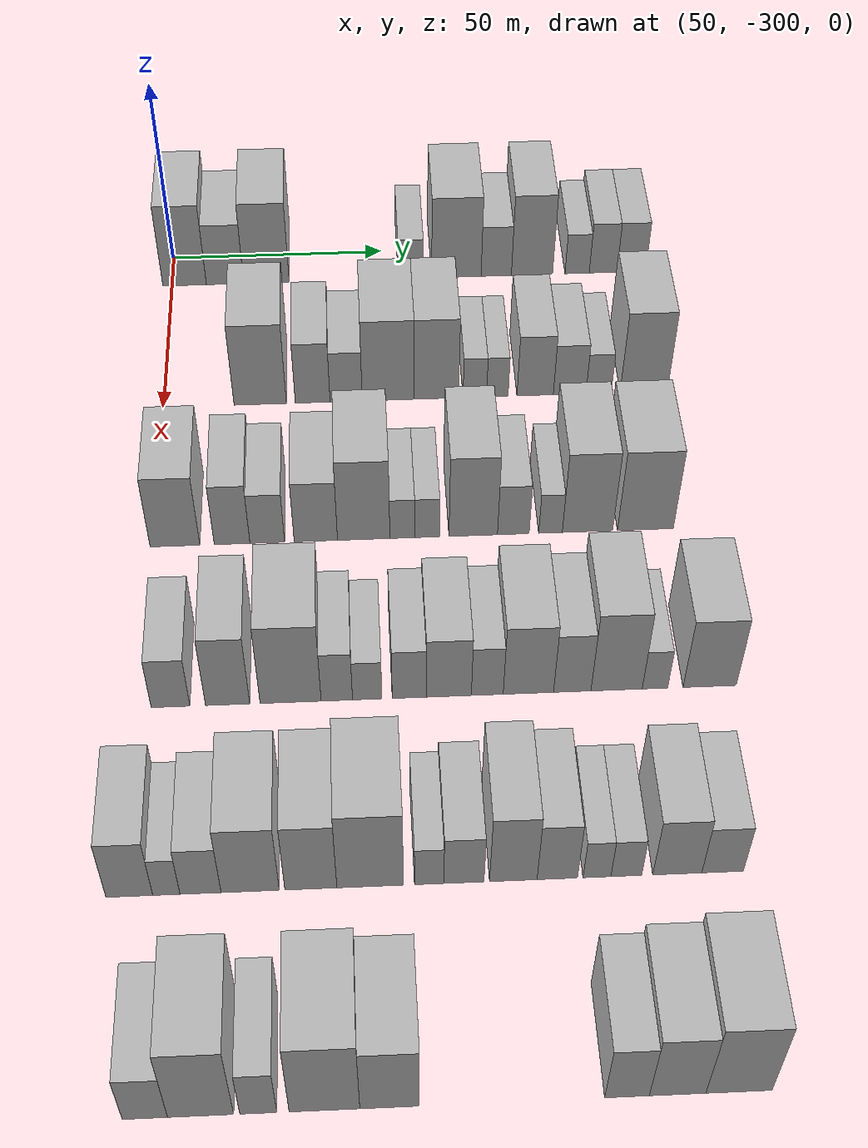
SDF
<sdf version="1.6">
 <world name="default">
  <model name="building_38">
   <static>1</static>
   <pose>50.0000 -296.9839 0 0.000000 0.000000 0.000000</pose>
   <link name="link">
    <pose>0 0 12.00 0 0 0</pose>
    <collision name="collision"><geometry><box><size>20.0000 10.2897 24.0000</size></box></geometry></collision>
    <visual name="visual">
     <cast_shadows>0</cast_shadows>
     <geometry><box><size>20.0000 10.2897 24.0000</size></box></geometry>
     <material>
      <script>
       <uri>model://HANNAS_wall/materials/scripts</uri>
       <uri>model://HANNAS_wall/materials/textures</uri>
       <name>vrc/HANNAS_wall</name>
      </script>
     </material>
    </visual>
   </link>
  </model>
  <model name="building_39">
   <static>1</static>
   <pose>50.0000 -287.4079 0 0.000000 0.000000 0.000000</pose>
   <link name="link">
    <pose>0 0 9.00 0 0 0</pose>
    <collision name="collision"><geometry><box><size>20.0000 8.8624 18.0000</size></box></geometry></collision>
    <visual name="visual">
     <cast_shadows>0</cast_shadows>
     <geometry><box><size>20.0000 8.8624 18.0000</size></box></geometry>
     <material>
      <script>
       <uri>model://HANNAS_wall/materials/scripts</uri>
       <uri>model://HANNAS_wall/materials/textures</uri>
       <name>vrc/HANNAS_wall</name>
      </script>
     </material>
    </visual>
   </link>
  </model>
  <model name="building_40">
   <static>1</static>
   <pose>50.0000 -277.5748 0 0.000000 0.000000 0.000000</pose>
   <link name="link">
    <pose>0 0 12.00 0 0 0</pose>
    <collision name="collision"><geometry><box><size>20.0000 10.8038 24.0000</size></box></geometry></collision>
    <visual name="visual">
     <cast_shadows>0</cast_shadows>
     <geometry><box><size>20.0000 10.8038 24.0000</size></box></geometry>
     <material>
      <script>
       <uri>model://HANNAS_wall/materials/scripts</uri>
       <uri>model://HANNAS_wall/materials/textures</uri>
       <name>vrc/HANNAS_wall</name>
      </script>
     </material>
    </visual>
   </link>
  </model>
  <model name="building_41">
   <static>1</static>
   <pose>50.0000 -243.2245 0 0.000000 0.000000 0.000000</pose>
   <link name="link">
    <pose>0 0 6.00 0 0 0</pose>
    <collision name="collision"><geometry><box><size>20.0000 5.9656 12.0000</size></box></geometry></collision>
    <visual name="visual">
     <cast_shadows>0</cast_shadows>
     <geometry><box><size>20.0000 5.9656 12.0000</size></box></geometry>
     <material>
      <script>
       <uri>model://HANNAS_wall/materials/scripts</uri>
       <uri>model://HANNAS_wall/materials/textures</uri>
       <name>vrc/HANNAS_wall</name>
      </script>
     </material>
    </visual>
   </link>
  </model>
  <model name="building_42">
   <static>1</static>
   <pose>50.0000 -232.3315 0 0.000000 0.000000 0.000000</pose>
   <link name="link">
    <pose>0 0 12.00 0 0 0</pose>
    <collision name="collision"><geometry><box><size>20.0000 11.8202 24.0000</size></box></geometry></collision>
    <visual name="visual">
     <cast_shadows>0</cast_shadows>
     <geometry><box><size>20.0000 11.8202 24.0000</size></box></geometry>
     <material>
      <script>
       <uri>model://HANNAS_wall/materials/scripts</uri>
       <uri>model://HANNAS_wall/materials/textures</uri>
       <name>vrc/HANNAS_wall</name>
      </script>
     </material>
    </visual>
   </link>
  </model>
  <model name="building_43">
   <static>1</static>
   <pose>50.0000 -222.7907 0 0.000000 0.000000 0.000000</pose>
   <link name="link">
    <pose>0 0 7.50 0 0 0</pose>
    <collision name="collision"><geometry><box><size>20.0000 7.2614 15.0000</size></box></geometry></collision>
    <visual name="visual">
     <cast_shadows>0</cast_shadows>
     <geometry><box><size>20.0000 7.2614 15.0000</size></box></geometry>
     <material>
      <script>
       <uri>model://HANNAS_wall/materials/scripts</uri>
       <uri>model://HANNAS_wall/materials/textures</uri>
       <name>vrc/HANNAS_wall</name>
      </script>
     </material>
    </visual>
   </link>
  </model>
  <model name="building_44">
   <static>1</static>
   <pose>50.0000 -214.2294 0 0.000000 0.000000 0.000000</pose>
   <link name="link">
    <pose>0 0 12.00 0 0 0</pose>
    <collision name="collision"><geometry><box><size>20.0000 9.8612 24.0000</size></box></geometry></collision>
    <visual name="visual">
     <cast_shadows>0</cast_shadows>
     <geometry><box><size>20.0000 9.8612 24.0000</size></box></geometry>
     <material>
      <script>
       <uri>model://HANNAS_wall/materials/scripts</uri>
       <uri>model://HANNAS_wall/materials/textures</uri>
       <name>vrc/HANNAS_wall</name>
      </script>
     </material>
    </visual>
   </link>
  </model>
  <model name="building_45">
   <static>1</static>
   <pose>50.0000 -203.3863 0 0.000000 0.000000 0.000000</pose>
   <link name="link">
    <pose>0 0 6.00 0 0 0</pose>
    <collision name="collision"><geometry><box><size>20.0000 5.8248 12.0000</size></box></geometry></collision>
    <visual name="visual">
     <cast_shadows>0</cast_shadows>
     <geometry><box><size>20.0000 5.8248 12.0000</size></box></geometry>
     <material>
      <script>
       <uri>model://HANNAS_wall/materials/scripts</uri>
       <uri>model://HANNAS_wall/materials/textures</uri>
       <name>vrc/HANNAS_wall</name>
      </script>
     </material>
    </visual>
   </link>
  </model>
  <model name="building_46">
   <static>1</static>
   <pose>50.0000 -197.1510 0 0.000000 0.000000 0.000000</pose>
   <link name="link">
    <pose>0 0 7.50 0 0 0</pose>
    <collision name="collision"><geometry><box><size>20.0000 6.6458 15.0000</size></box></geometry></collision>
    <visual name="visual">
     <cast_shadows>0</cast_shadows>
     <geometry><box><size>20.0000 6.6458 15.0000</size></box></geometry>
     <material>
      <script>
       <uri>model://HANNAS_wall/materials/scripts</uri>
       <uri>model://HANNAS_wall/materials/textures</uri>
       <name>vrc/HANNAS_wall</name>
      </script>
     </material>
    </visual>
   </link>
  </model>
  <model name="building_47">
   <static>1</static>
   <pose>50.0000 -190.3913 0 0.000000 0.000000 0.000000</pose>
   <link name="link">
    <pose>0 0 7.50 0 0 0</pose>
    <collision name="collision"><geometry><box><size>20.0000 6.8738 15.0000</size></box></geometry></collision>
    <visual name="visual">
     <cast_shadows>0</cast_shadows>
     <geometry><box><size>20.0000 6.8738 15.0000</size></box></geometry>
     <material>
      <script>
       <uri>model://HANNAS_wall/materials/scripts</uri>
       <uri>model://HANNAS_wall/materials/textures</uri>
       <name>vrc/HANNAS_wall</name>
      </script>
     </material>
    </visual>
   </link>
  </model>
  <model name="building_179">
   <static>1</static>
   <pose>90.0000 -278.4819 0 0.000000 0.000000 0.000000</pose>
   <link name="link">
    <pose>0 0 12.00 0 0 0</pose>
    <collision name="collision"><geometry><box><size>20.0000 11.6277 24.0000</size></box></geometry></collision>
    <visual name="visual">
     <cast_shadows>0</cast_shadows>
     <geometry><box><size>20.0000 11.6277 24.0000</size></box></geometry>
     <material>
      <script>
       <uri>model://HANNAS_wall/materials/scripts</uri>
       <uri>model://HANNAS_wall/materials/textures</uri>
       <name>vrc/HANNAS_wall</name>
      </script>
     </material>
    </visual>
   </link>
  </model>
  <model name="building_180">
   <static>1</static>
   <pose>90.0000 -266.7955 0 0.000000 0.000000 0.000000</pose>
   <link name="link">
    <pose>0 0 9.00 0 0 0</pose>
    <collision name="collision"><geometry><box><size>20.0000 7.7450 18.0000</size></box></geometry></collision>
    <visual name="visual">
     <cast_shadows>0</cast_shadows>
     <geometry><box><size>20.0000 7.7450 18.0000</size></box></geometry>
     <material>
      <script>
       <uri>model://HANNAS_wall/materials/scripts</uri>
       <uri>model://HANNAS_wall/materials/textures</uri>
       <name>vrc/HANNAS_wall</name>
      </script>
     </material>
    </visual>
   </link>
  </model>
  <model name="building_181">
   <static>1</static>
   <pose>90.0000 -259.3397 0 0.000000 0.000000 0.000000</pose>
   <link name="link">
    <pose>0 0 7.50 0 0 0</pose>
    <collision name="collision"><geometry><box><size>20.0000 7.1667 15.0000</size></box></geometry></collision>
    <visual name="visual">
     <cast_shadows>0</cast_shadows>
     <geometry><box><size>20.0000 7.1667 15.0000</size></box></geometry>
     <material>
      <script>
       <uri>model://HANNAS_wall/materials/scripts</uri>
       <uri>model://HANNAS_wall/materials/textures</uri>
       <name>vrc/HANNAS_wall</name>
      </script>
     </material>
    </visual>
   </link>
  </model>
  <model name="building_182">
   <static>1</static>
   <pose>90.0000 -249.9329 0 0.000000 0.000000 0.000000</pose>
   <link name="link">
    <pose>0 0 12.00 0 0 0</pose>
    <collision name="collision"><geometry><box><size>20.0000 11.6470 24.0000</size></box></geometry></collision>
    <visual name="visual">
     <cast_shadows>0</cast_shadows>
     <geometry><box><size>20.0000 11.6470 24.0000</size></box></geometry>
     <material>
      <script>
       <uri>model://HANNAS_wall/materials/scripts</uri>
       <uri>model://HANNAS_wall/materials/textures</uri>
       <name>vrc/HANNAS_wall</name>
      </script>
     </material>
    </visual>
   </link>
  </model>
  <model name="building_183">
   <static>1</static>
   <pose>90.0000 -239.1637 0 0.000000 0.000000 0.000000</pose>
   <link name="link">
    <pose>0 0 12.00 0 0 0</pose>
    <collision name="collision"><geometry><box><size>20.0000 9.8913 24.0000</size></box></geometry></collision>
    <visual name="visual">
     <cast_shadows>0</cast_shadows>
     <geometry><box><size>20.0000 9.8913 24.0000</size></box></geometry>
     <material>
      <script>
       <uri>model://HANNAS_wall/materials/scripts</uri>
       <uri>model://HANNAS_wall/materials/textures</uri>
       <name>vrc/HANNAS_wall</name>
      </script>
     </material>
    </visual>
   </link>
  </model>
  <model name="building_184">
   <static>1</static>
   <pose>90.0000 -230.5788 0 0.000000 0.000000 0.000000</pose>
   <link name="link">
    <pose>0 0 6.00 0 0 0</pose>
    <collision name="collision"><geometry><box><size>20.0000 5.2786 12.0000</size></box></geometry></collision>
    <visual name="visual">
     <cast_shadows>0</cast_shadows>
     <geometry><box><size>20.0000 5.2786 12.0000</size></box></geometry>
     <material>
      <script>
       <uri>model://HANNAS_wall/materials/scripts</uri>
       <uri>model://HANNAS_wall/materials/textures</uri>
       <name>vrc/HANNAS_wall</name>
      </script>
     </material>
    </visual>
   </link>
  </model>
  <model name="building_185">
   <static>1</static>
   <pose>90.0000 -225.5299 0 0.000000 0.000000 0.000000</pose>
   <link name="link">
    <pose>0 0 6.00 0 0 0</pose>
    <collision name="collision"><geometry><box><size>20.0000 4.8191 12.0000</size></box></geometry></collision>
    <visual name="visual">
     <cast_shadows>0</cast_shadows>
     <geometry><box><size>20.0000 4.8191 12.0000</size></box></geometry>
     <material>
      <script>
       <uri>model://HANNAS_wall/materials/scripts</uri>
       <uri>model://HANNAS_wall/materials/textures</uri>
       <name>vrc/HANNAS_wall</name>
      </script>
     </material>
    </visual>
   </link>
  </model>
  <model name="building_186">
   <static>1</static>
   <pose>90.0000 -217.0432 0 0.000000 0.000000 0.000000</pose>
   <link name="link">
    <pose>0 0 9.00 0 0 0</pose>
    <collision name="collision"><geometry><box><size>20.0000 8.1545 18.0000</size></box></geometry></collision>
    <visual name="visual">
     <cast_shadows>0</cast_shadows>
     <geometry><box><size>20.0000 8.1545 18.0000</size></box></geometry>
     <material>
      <script>
       <uri>model://HANNAS_wall/materials/scripts</uri>
       <uri>model://HANNAS_wall/materials/textures</uri>
       <name>vrc/HANNAS_wall</name>
      </script>
     </material>
    </visual>
   </link>
  </model>
  <model name="building_187">
   <static>1</static>
   <pose>90.0000 -209.2895 0 0.000000 0.000000 0.000000</pose>
   <link name="link">
    <pose>0 0 7.50 0 0 0</pose>
    <collision name="collision"><geometry><box><size>20.0000 7.3528 15.0000</size></box></geometry></collision>
    <visual name="visual">
     <cast_shadows>0</cast_shadows>
     <geometry><box><size>20.0000 7.3528 15.0000</size></box></geometry>
     <material>
      <script>
       <uri>model://HANNAS_wall/materials/scripts</uri>
       <uri>model://HANNAS_wall/materials/textures</uri>
       <name>vrc/HANNAS_wall</name>
      </script>
     </material>
    </visual>
   </link>
  </model>
  <model name="building_188">
   <static>1</static>
   <pose>90.0000 -202.7772 0 0.000000 0.000000 0.000000</pose>
   <link name="link">
    <pose>0 0 6.00 0 0 0</pose>
    <collision name="collision"><geometry><box><size>20.0000 5.6718 12.0000</size></box></geometry></collision>
    <visual name="visual">
     <cast_shadows>0</cast_shadows>
     <geometry><box><size>20.0000 5.6718 12.0000</size></box></geometry>
     <material>
      <script>
       <uri>model://HANNAS_wall/materials/scripts</uri>
       <uri>model://HANNAS_wall/materials/textures</uri>
       <name>vrc/HANNAS_wall</name>
      </script>
     </material>
    </visual>
   </link>
  </model>
  <model name="building_189">
   <static>1</static>
   <pose>90.0000 -192.6108 0 0.000000 0.000000 0.000000</pose>
   <link name="link">
    <pose>0 0 12.00 0 0 0</pose>
    <collision name="collision"><geometry><box><size>20.0000 10.6610 24.0000</size></box></geometry></collision>
    <visual name="visual">
     <cast_shadows>0</cast_shadows>
     <geometry><box><size>20.0000 10.6610 24.0000</size></box></geometry>
     <material>
      <script>
       <uri>model://HANNAS_wall/materials/scripts</uri>
       <uri>model://HANNAS_wall/materials/textures</uri>
       <name>vrc/HANNAS_wall</name>
      </script>
     </material>
    </visual>
   </link>
  </model>
  <model name="building_318">
   <static>1</static>
   <pose>130.0000 -295.5775 0 0.000000 0.000000 0.000000</pose>
   <link name="link">
    <pose>0 0 10.50 0 0 0</pose>
    <collision name="collision"><geometry><box><size>20.0000 10.2901 21.0000</size></box></geometry></collision>
    <visual name="visual">
     <cast_shadows>0</cast_shadows>
     <geometry><box><size>20.0000 10.2901 21.0000</size></box></geometry>
     <material>
      <script>
       <uri>model://HANNAS_wall/materials/scripts</uri>
       <uri>model://HANNAS_wall/materials/textures</uri>
       <name>vrc/HANNAS_wall</name>
      </script>
     </material>
    </visual>
   </link>
  </model>
  <model name="building_319">
   <static>1</static>
   <pose>130.0000 -283.7411 0 0.000000 0.000000 0.000000</pose>
   <link name="link">
    <pose>0 0 9.00 0 0 0</pose>
    <collision name="collision"><geometry><box><size>20.0000 7.3829 18.0000</size></box></geometry></collision>
    <visual name="visual">
     <cast_shadows>0</cast_shadows>
     <geometry><box><size>20.0000 7.3829 18.0000</size></box></geometry>
     <material>
      <script>
       <uri>model://HANNAS_wall/materials/scripts</uri>
       <uri>model://HANNAS_wall/materials/textures</uri>
       <name>vrc/HANNAS_wall</name>
      </script>
     </material>
    </visual>
   </link>
  </model>
  <model name="building_320">
   <static>1</static>
   <pose>130.0000 -276.4550 0 0.000000 0.000000 0.000000</pose>
   <link name="link">
    <pose>0 0 7.50 0 0 0</pose>
    <collision name="collision"><geometry><box><size>20.0000 7.1892 15.0000</size></box></geometry></collision>
    <visual name="visual">
     <cast_shadows>0</cast_shadows>
     <geometry><box><size>20.0000 7.1892 15.0000</size></box></geometry>
     <material>
      <script>
       <uri>model://HANNAS_wall/materials/scripts</uri>
       <uri>model://HANNAS_wall/materials/textures</uri>
       <name>vrc/HANNAS_wall</name>
      </script>
     </material>
    </visual>
   </link>
  </model>
  <model name="building_321">
   <static>1</static>
   <pose>130.0000 -266.3626 0 0.000000 0.000000 0.000000</pose>
   <link name="link">
    <pose>0 0 9.00 0 0 0</pose>
    <collision name="collision"><geometry><box><size>20.0000 8.9956 18.0000</size></box></geometry></collision>
    <visual name="visual">
     <cast_shadows>0</cast_shadows>
     <geometry><box><size>20.0000 8.9956 18.0000</size></box></geometry>
     <material>
      <script>
       <uri>model://HANNAS_wall/materials/scripts</uri>
       <uri>model://HANNAS_wall/materials/textures</uri>
       <name>vrc/HANNAS_wall</name>
      </script>
     </material>
    </visual>
   </link>
  </model>
  <model name="building_322">
   <static>1</static>
   <pose>130.0000 -256.4152 0 0.000000 0.000000 0.000000</pose>
   <link name="link">
    <pose>0 0 12.00 0 0 0</pose>
    <collision name="collision"><geometry><box><size>20.0000 10.8993 24.0000</size></box></geometry></collision>
    <visual name="visual">
     <cast_shadows>0</cast_shadows>
     <geometry><box><size>20.0000 10.8993 24.0000</size></box></geometry>
     <material>
      <script>
       <uri>model://HANNAS_wall/materials/scripts</uri>
       <uri>model://HANNAS_wall/materials/textures</uri>
       <name>vrc/HANNAS_wall</name>
      </script>
     </material>
    </visual>
   </link>
  </model>
  <model name="building_323">
   <static>1</static>
   <pose>130.0000 -248.3699 0 0.000000 0.000000 0.000000</pose>
   <link name="link">
    <pose>0 0 6.00 0 0 0</pose>
    <collision name="collision"><geometry><box><size>20.0000 5.1913 12.0000</size></box></geometry></collision>
    <visual name="visual">
     <cast_shadows>0</cast_shadows>
     <geometry><box><size>20.0000 5.1913 12.0000</size></box></geometry>
     <material>
      <script>
       <uri>model://HANNAS_wall/materials/scripts</uri>
       <uri>model://HANNAS_wall/materials/textures</uri>
       <name>vrc/HANNAS_wall</name>
      </script>
     </material>
    </visual>
   </link>
  </model>
  <model name="building_324">
   <static>1</static>
   <pose>130.0000 -243.2069 0 0.000000 0.000000 0.000000</pose>
   <link name="link">
    <pose>0 0 6.00 0 0 0</pose>
    <collision name="collision"><geometry><box><size>20.0000 5.1347 12.0000</size></box></geometry></collision>
    <visual name="visual">
     <cast_shadows>0</cast_shadows>
     <geometry><box><size>20.0000 5.1347 12.0000</size></box></geometry>
     <material>
      <script>
       <uri>model://HANNAS_wall/materials/scripts</uri>
       <uri>model://HANNAS_wall/materials/textures</uri>
       <name>vrc/HANNAS_wall</name>
      </script>
     </material>
    </visual>
   </link>
  </model>
  <model name="building_325">
   <static>1</static>
   <pose>130.0000 -233.5717 0 0.000000 0.000000 0.000000</pose>
   <link name="link">
    <pose>0 0 12.00 0 0 0</pose>
    <collision name="collision"><geometry><box><size>20.0000 10.1357 24.0000</size></box></geometry></collision>
    <visual name="visual">
     <cast_shadows>0</cast_shadows>
     <geometry><box><size>20.0000 10.1357 24.0000</size></box></geometry>
     <material>
      <script>
       <uri>model://HANNAS_wall/materials/scripts</uri>
       <uri>model://HANNAS_wall/materials/textures</uri>
       <name>vrc/HANNAS_wall</name>
      </script>
     </material>
    </visual>
   </link>
  </model>
  <model name="building_326">
   <static>1</static>
   <pose>130.0000 -225.1940 0 0.000000 0.000000 0.000000</pose>
   <link name="link">
    <pose>0 0 7.50 0 0 0</pose>
    <collision name="collision"><geometry><box><size>20.0000 6.6199 15.0000</size></box></geometry></collision>
    <visual name="visual">
     <cast_shadows>0</cast_shadows>
     <geometry><box><size>20.0000 6.6199 15.0000</size></box></geometry>
     <material>
      <script>
       <uri>model://HANNAS_wall/materials/scripts</uri>
       <uri>model://HANNAS_wall/materials/textures</uri>
       <name>vrc/HANNAS_wall</name>
      </script>
     </material>
    </visual>
   </link>
  </model>
  <model name="building_327">
   <static>1</static>
   <pose>130.0000 -217.4072 0 0.000000 0.000000 0.000000</pose>
   <link name="link">
    <pose>0 0 6.00 0 0 0</pose>
    <collision name="collision"><geometry><box><size>20.0000 4.9537 12.0000</size></box></geometry></collision>
    <visual name="visual">
     <cast_shadows>0</cast_shadows>
     <geometry><box><size>20.0000 4.9537 12.0000</size></box></geometry>
     <material>
      <script>
       <uri>model://HANNAS_wall/materials/scripts</uri>
       <uri>model://HANNAS_wall/materials/textures</uri>
       <name>vrc/HANNAS_wall</name>
      </script>
     </material>
    </visual>
   </link>
  </model>
  <model name="building_328">
   <static>1</static>
   <pose>130.0000 -209.6486 0 0.000000 0.000000 0.000000</pose>
   <link name="link">
    <pose>0 0 12.00 0 0 0</pose>
    <collision name="collision"><geometry><box><size>20.0000 10.5635 24.0000</size></box></geometry></collision>
    <visual name="visual">
     <cast_shadows>0</cast_shadows>
     <geometry><box><size>20.0000 10.5635 24.0000</size></box></geometry>
     <material>
      <script>
       <uri>model://HANNAS_wall/materials/scripts</uri>
       <uri>model://HANNAS_wall/materials/textures</uri>
       <name>vrc/HANNAS_wall</name>
      </script>
     </material>
    </visual>
   </link>
  </model>
  <model name="building_329">
   <static>1</static>
   <pose>130.0000 -197.4934 0 0.000000 0.000000 0.000000</pose>
   <link name="link">
    <pose>0 0 12.00 0 0 0</pose>
    <collision name="collision"><geometry><box><size>20.0000 11.7470 24.0000</size></box></geometry></collision>
    <visual name="visual">
     <cast_shadows>0</cast_shadows>
     <geometry><box><size>20.0000 11.7470 24.0000</size></box></geometry>
     <material>
      <script>
       <uri>model://HANNAS_wall/materials/scripts</uri>
       <uri>model://HANNAS_wall/materials/textures</uri>
       <name>vrc/HANNAS_wall</name>
      </script>
     </material>
    </visual>
   </link>
  </model>
  <model name="building_457">
   <static>1</static>
   <pose>170.0000 -294.5818 0 0.000000 0.000000 0.000000</pose>
   <link name="link">
    <pose>0 0 7.50 0 0 0</pose>
    <collision name="collision"><geometry><box><size>20.0000 7.4301 15.0000</size></box></geometry></collision>
    <visual name="visual">
     <cast_shadows>0</cast_shadows>
     <geometry><box><size>20.0000 7.4301 15.0000</size></box></geometry>
     <material>
      <script>
       <uri>model://HANNAS_wall/materials/scripts</uri>
       <uri>model://HANNAS_wall/materials/textures</uri>
       <name>vrc/HANNAS_wall</name>
      </script>
     </material>
    </visual>
   </link>
  </model>
  <model name="building_458">
   <static>1</static>
   <pose>170.0000 -283.6159 0 0.000000 0.000000 0.000000</pose>
   <link name="link">
    <pose>0 0 10.50 0 0 0</pose>
    <collision name="collision"><geometry><box><size>20.0000 8.5017 21.0000</size></box></geometry></collision>
    <visual name="visual">
     <cast_shadows>0</cast_shadows>
     <geometry><box><size>20.0000 8.5017 21.0000</size></box></geometry>
     <material>
      <script>
       <uri>model://HANNAS_wall/materials/scripts</uri>
       <uri>model://HANNAS_wall/materials/textures</uri>
       <name>vrc/HANNAS_wall</name>
      </script>
     </material>
    </visual>
   </link>
  </model>
  <model name="building_459">
   <static>1</static>
   <pose>170.0000 -271.4887 0 0.000000 0.000000 0.000000</pose>
   <link name="link">
    <pose>0 0 12.00 0 0 0</pose>
    <collision name="collision"><geometry><box><size>20.0000 11.7528 24.0000</size></box></geometry></collision>
    <visual name="visual">
     <cast_shadows>0</cast_shadows>
     <geometry><box><size>20.0000 11.7528 24.0000</size></box></geometry>
     <material>
      <script>
       <uri>model://HANNAS_wall/materials/scripts</uri>
       <uri>model://HANNAS_wall/materials/textures</uri>
       <name>vrc/HANNAS_wall</name>
      </script>
     </material>
    </visual>
   </link>
  </model>
  <model name="building_460">
   <static>1</static>
   <pose>170.0000 -262.5869 0 0.000000 0.000000 0.000000</pose>
   <link name="link">
    <pose>0 0 7.50 0 0 0</pose>
    <collision name="collision"><geometry><box><size>20.0000 6.0507 15.0000</size></box></geometry></collision>
    <visual name="visual">
     <cast_shadows>0</cast_shadows>
     <geometry><box><size>20.0000 6.0507 15.0000</size></box></geometry>
     <material>
      <script>
       <uri>model://HANNAS_wall/materials/scripts</uri>
       <uri>model://HANNAS_wall/materials/textures</uri>
       <name>vrc/HANNAS_wall</name>
      </script>
     </material>
    </visual>
   </link>
  </model>
  <model name="building_461">
   <static>1</static>
   <pose>170.0000 -256.7274 0 0.000000 0.000000 0.000000</pose>
   <link name="link">
    <pose>0 0 6.00 0 0 0</pose>
    <collision name="collision"><geometry><box><size>20.0000 5.6682 12.0000</size></box></geometry></collision>
    <visual name="visual">
     <cast_shadows>0</cast_shadows>
     <geometry><box><size>20.0000 5.6682 12.0000</size></box></geometry>
     <material>
      <script>
       <uri>model://HANNAS_wall/materials/scripts</uri>
       <uri>model://HANNAS_wall/materials/textures</uri>
       <name>vrc/HANNAS_wall</name>
      </script>
     </material>
    </visual>
   </link>
  </model>
  <model name="building_462">
   <static>1</static>
   <pose>170.0000 -248.6005 0 0.000000 0.000000 0.000000</pose>
   <link name="link">
    <pose>0 0 7.50 0 0 0</pose>
    <collision name="collision"><geometry><box><size>20.0000 6.5857 15.0000</size></box></geometry></collision>
    <visual name="visual">
     <cast_shadows>0</cast_shadows>
     <geometry><box><size>20.0000 6.5857 15.0000</size></box></geometry>
     <material>
      <script>
       <uri>model://HANNAS_wall/materials/scripts</uri>
       <uri>model://HANNAS_wall/materials/textures</uri>
       <name>vrc/HANNAS_wall</name>
      </script>
     </material>
    </visual>
   </link>
  </model>
  <model name="building_463">
   <static>1</static>
   <pose>170.0000 -240.9438 0 0.000000 0.000000 0.000000</pose>
   <link name="link">
    <pose>0 0 9.00 0 0 0</pose>
    <collision name="collision"><geometry><box><size>20.0000 8.7277 18.0000</size></box></geometry></collision>
    <visual name="visual">
     <cast_shadows>0</cast_shadows>
     <geometry><box><size>20.0000 8.7277 18.0000</size></box></geometry>
     <material>
      <script>
       <uri>model://HANNAS_wall/materials/scripts</uri>
       <uri>model://HANNAS_wall/materials/textures</uri>
       <name>vrc/HANNAS_wall</name>
      </script>
     </material>
    </visual>
   </link>
  </model>
  <model name="building_464">
   <static>1</static>
   <pose>170.0000 -233.4917 0 0.000000 0.000000 0.000000</pose>
   <link name="link">
    <pose>0 0 7.50 0 0 0</pose>
    <collision name="collision"><geometry><box><size>20.0000 6.1766 15.0000</size></box></geometry></collision>
    <visual name="visual">
     <cast_shadows>0</cast_shadows>
     <geometry><box><size>20.0000 6.1766 15.0000</size></box></geometry>
     <material>
      <script>
       <uri>model://HANNAS_wall/materials/scripts</uri>
       <uri>model://HANNAS_wall/materials/textures</uri>
       <name>vrc/HANNAS_wall</name>
      </script>
     </material>
    </visual>
   </link>
  </model>
  <model name="building_465">
   <static>1</static>
   <pose>170.0000 -225.5157 0 0.000000 0.000000 0.000000</pose>
   <link name="link">
    <pose>0 0 10.50 0 0 0</pose>
    <collision name="collision"><geometry><box><size>20.0000 9.7752 21.0000</size></box></geometry></collision>
    <visual name="visual">
     <cast_shadows>0</cast_shadows>
     <geometry><box><size>20.0000 9.7752 21.0000</size></box></geometry>
     <material>
      <script>
       <uri>model://HANNAS_wall/materials/scripts</uri>
       <uri>model://HANNAS_wall/materials/textures</uri>
       <name>vrc/HANNAS_wall</name>
      </script>
     </material>
    </visual>
   </link>
  </model>
  <model name="building_466">
   <static>1</static>
   <pose>170.0000 -216.9889 0 0.000000 0.000000 0.000000</pose>
   <link name="link">
    <pose>0 0 9.00 0 0 0</pose>
    <collision name="collision"><geometry><box><size>20.0000 7.2783 18.0000</size></box></geometry></collision>
    <visual name="visual">
     <cast_shadows>0</cast_shadows>
     <geometry><box><size>20.0000 7.2783 18.0000</size></box></geometry>
     <material>
      <script>
       <uri>model://HANNAS_wall/materials/scripts</uri>
       <uri>model://HANNAS_wall/materials/textures</uri>
       <name>vrc/HANNAS_wall</name>
      </script>
     </material>
    </visual>
   </link>
  </model>
  <model name="building_467">
   <static>1</static>
   <pose>170.0000 -208.3487 0 0.000000 0.000000 0.000000</pose>
   <link name="link">
    <pose>0 0 12.00 0 0 0</pose>
    <collision name="collision"><geometry><box><size>20.0000 10.0021 24.0000</size></box></geometry></collision>
    <visual name="visual">
     <cast_shadows>0</cast_shadows>
     <geometry><box><size>20.0000 10.0021 24.0000</size></box></geometry>
     <material>
      <script>
       <uri>model://HANNAS_wall/materials/scripts</uri>
       <uri>model://HANNAS_wall/materials/textures</uri>
       <name>vrc/HANNAS_wall</name>
      </script>
     </material>
    </visual>
   </link>
  </model>
  <model name="building_468">
   <static>1</static>
   <pose>170.0000 -200.8693 0 0.000000 0.000000 0.000000</pose>
   <link name="link">
    <pose>0 0 6.00 0 0 0</pose>
    <collision name="collision"><geometry><box><size>20.0000 4.9569 12.0000</size></box></geometry></collision>
    <visual name="visual">
     <cast_shadows>0</cast_shadows>
     <geometry><box><size>20.0000 4.9569 12.0000</size></box></geometry>
     <material>
      <script>
       <uri>model://HANNAS_wall/materials/scripts</uri>
       <uri>model://HANNAS_wall/materials/textures</uri>
       <name>vrc/HANNAS_wall</name>
      </script>
     </material>
    </visual>
   </link>
  </model>
  <model name="building_469">
   <static>1</static>
   <pose>170.0000 -190.1889 0 0.000000 0.000000 0.000000</pose>
   <link name="link">
    <pose>0 0 10.50 0 0 0</pose>
    <collision name="collision"><geometry><box><size>20.0000 10.4039 21.0000</size></box></geometry></collision>
    <visual name="visual">
     <cast_shadows>0</cast_shadows>
     <geometry><box><size>20.0000 10.4039 21.0000</size></box></geometry>
     <material>
      <script>
       <uri>model://HANNAS_wall/materials/scripts</uri>
       <uri>model://HANNAS_wall/materials/textures</uri>
       <name>vrc/HANNAS_wall</name>
      </script>
     </material>
    </visual>
   </link>
  </model>
  <model name="building_584">
   <static>1</static>
   <pose>210.0000 -299.9465 0 0.000000 0.000000 0.000000</pose>
   <link name="link">
    <pose>0 0 9.00 0 0 0</pose>
    <collision name="collision"><geometry><box><size>20.0000 8.2858 18.0000</size></box></geometry></collision>
    <visual name="visual">
     <cast_shadows>0</cast_shadows>
     <geometry><box><size>20.0000 8.2858 18.0000</size></box></geometry>
     <material>
      <script>
       <uri>model://HANNAS_wall/materials/scripts</uri>
       <uri>model://HANNAS_wall/materials/textures</uri>
       <name>vrc/HANNAS_wall</name>
      </script>
     </material>
    </visual>
   </link>
  </model>
  <model name="building_585">
   <static>1</static>
   <pose>210.0000 -293.3977 0 0.000000 0.000000 0.000000</pose>
   <link name="link">
    <pose>0 0 6.00 0 0 0</pose>
    <collision name="collision"><geometry><box><size>20.0000 4.8119 12.0000</size></box></geometry></collision>
    <visual name="visual">
     <cast_shadows>0</cast_shadows>
     <geometry><box><size>20.0000 4.8119 12.0000</size></box></geometry>
     <material>
      <script>
       <uri>model://HANNAS_wall/materials/scripts</uri>
       <uri>model://HANNAS_wall/materials/textures</uri>
       <name>vrc/HANNAS_wall</name>
      </script>
     </material>
    </visual>
   </link>
  </model>
  <model name="building_586">
   <static>1</static>
   <pose>210.0000 -287.3549 0 0.000000 0.000000 0.000000</pose>
   <link name="link">
    <pose>0 0 7.50 0 0 0</pose>
    <collision name="collision"><geometry><box><size>20.0000 7.2735 15.0000</size></box></geometry></collision>
    <visual name="visual">
     <cast_shadows>0</cast_shadows>
     <geometry><box><size>20.0000 7.2735 15.0000</size></box></geometry>
     <material>
      <script>
       <uri>model://HANNAS_wall/materials/scripts</uri>
       <uri>model://HANNAS_wall/materials/textures</uri>
       <name>vrc/HANNAS_wall</name>
      </script>
     </material>
    </visual>
   </link>
  </model>
  <model name="building_587">
   <static>1</static>
   <pose>210.0000 -278.5592 0 0.000000 0.000000 0.000000</pose>
   <link name="link">
    <pose>0 0 10.50 0 0 0</pose>
    <collision name="collision"><geometry><box><size>20.0000 10.3178 21.0000</size></box></geometry></collision>
    <visual name="visual">
     <cast_shadows>0</cast_shadows>
     <geometry><box><size>20.0000 10.3178 21.0000</size></box></geometry>
     <material>
      <script>
       <uri>model://HANNAS_wall/materials/scripts</uri>
       <uri>model://HANNAS_wall/materials/textures</uri>
       <name>vrc/HANNAS_wall</name>
      </script>
     </material>
    </visual>
   </link>
  </model>
  <model name="building_588">
   <static>1</static>
   <pose>210.0000 -267.7813 0 0.000000 0.000000 0.000000</pose>
   <link name="link">
    <pose>0 0 10.50 0 0 0</pose>
    <collision name="collision"><geometry><box><size>20.0000 9.2381 21.0000</size></box></geometry></collision>
    <visual name="visual">
     <cast_shadows>0</cast_shadows>
     <geometry><box><size>20.0000 9.2381 21.0000</size></box></geometry>
     <material>
      <script>
       <uri>model://HANNAS_wall/materials/scripts</uri>
       <uri>model://HANNAS_wall/materials/textures</uri>
       <name>vrc/HANNAS_wall</name>
      </script>
     </material>
    </visual>
   </link>
  </model>
  <model name="building_589">
   <static>1</static>
   <pose>210.0000 -257.2479 0 0.000000 0.000000 0.000000</pose>
   <link name="link">
    <pose>0 0 12.00 0 0 0</pose>
    <collision name="collision"><geometry><box><size>20.0000 11.8286 24.0000</size></box></geometry></collision>
    <visual name="visual">
     <cast_shadows>0</cast_shadows>
     <geometry><box><size>20.0000 11.8286 24.0000</size></box></geometry>
     <material>
      <script>
       <uri>model://HANNAS_wall/materials/scripts</uri>
       <uri>model://HANNAS_wall/materials/textures</uri>
       <name>vrc/HANNAS_wall</name>
      </script>
     </material>
    </visual>
   </link>
  </model>
  <model name="building_590">
   <static>1</static>
   <pose>210.0000 -246.7299 0 0.000000 0.000000 0.000000</pose>
   <link name="link">
    <pose>0 0 6.00 0 0 0</pose>
    <collision name="collision"><geometry><box><size>20.0000 5.2073 12.0000</size></box></geometry></collision>
    <visual name="visual">
     <cast_shadows>0</cast_shadows>
     <geometry><box><size>20.0000 5.2073 12.0000</size></box></geometry>
     <material>
      <script>
       <uri>model://HANNAS_wall/materials/scripts</uri>
       <uri>model://HANNAS_wall/materials/textures</uri>
       <name>vrc/HANNAS_wall</name>
      </script>
     </material>
    </visual>
   </link>
  </model>
  <model name="building_591">
   <static>1</static>
   <pose>210.0000 -240.5333 0 0.000000 0.000000 0.000000</pose>
   <link name="link">
    <pose>0 0 7.50 0 0 0</pose>
    <collision name="collision"><geometry><box><size>20.0000 7.1860 15.0000</size></box></geometry></collision>
    <visual name="visual">
     <cast_shadows>0</cast_shadows>
     <geometry><box><size>20.0000 7.1860 15.0000</size></box></geometry>
     <material>
      <script>
       <uri>model://HANNAS_wall/materials/scripts</uri>
       <uri>model://HANNAS_wall/materials/textures</uri>
       <name>vrc/HANNAS_wall</name>
      </script>
     </material>
    </visual>
   </link>
  </model>
  <model name="building_592">
   <static>1</static>
   <pose>210.0000 -231.6875 0 0.000000 0.000000 0.000000</pose>
   <link name="link">
    <pose>0 0 10.50 0 0 0</pose>
    <collision name="collision"><geometry><box><size>20.0000 8.5055 21.0000</size></box></geometry></collision>
    <visual name="visual">
     <cast_shadows>0</cast_shadows>
     <geometry><box><size>20.0000 8.5055 21.0000</size></box></geometry>
     <material>
      <script>
       <uri>model://HANNAS_wall/materials/scripts</uri>
       <uri>model://HANNAS_wall/materials/textures</uri>
       <name>vrc/HANNAS_wall</name>
      </script>
     </material>
    </visual>
   </link>
  </model>
  <model name="building_593">
   <static>1</static>
   <pose>210.0000 -223.8188 0 0.000000 0.000000 0.000000</pose>
   <link name="link">
    <pose>0 0 9.00 0 0 0</pose>
    <collision name="collision"><geometry><box><size>20.0000 7.2319 18.0000</size></box></geometry></collision>
    <visual name="visual">
     <cast_shadows>0</cast_shadows>
     <geometry><box><size>20.0000 7.2319 18.0000</size></box></geometry>
     <material>
      <script>
       <uri>model://HANNAS_wall/materials/scripts</uri>
       <uri>model://HANNAS_wall/materials/textures</uri>
       <name>vrc/HANNAS_wall</name>
      </script>
     </material>
    </visual>
   </link>
  </model>
  <model name="building_594">
   <static>1</static>
   <pose>210.0000 -216.6959 0 0.000000 0.000000 0.000000</pose>
   <link name="link">
    <pose>0 0 6.00 0 0 0</pose>
    <collision name="collision"><geometry><box><size>20.0000 5.0139 12.0000</size></box></geometry></collision>
    <visual name="visual">
     <cast_shadows>0</cast_shadows>
     <geometry><box><size>20.0000 5.0139 12.0000</size></box></geometry>
     <material>
      <script>
       <uri>model://HANNAS_wall/materials/scripts</uri>
       <uri>model://HANNAS_wall/materials/textures</uri>
       <name>vrc/HANNAS_wall</name>
      </script>
     </material>
    </visual>
   </link>
  </model>
  <model name="building_595">
   <static>1</static>
   <pose>210.0000 -211.4296 0 0.000000 0.000000 0.000000</pose>
   <link name="link">
    <pose>0 0 6.00 0 0 0</pose>
    <collision name="collision"><geometry><box><size>20.0000 5.5189 12.0000</size></box></geometry></collision>
    <visual name="visual">
     <cast_shadows>0</cast_shadows>
     <geometry><box><size>20.0000 5.5189 12.0000</size></box></geometry>
     <material>
      <script>
       <uri>model://HANNAS_wall/materials/scripts</uri>
       <uri>model://HANNAS_wall/materials/textures</uri>
       <name>vrc/HANNAS_wall</name>
      </script>
     </material>
    </visual>
   </link>
  </model>
  <model name="building_596">
   <static>1</static>
   <pose>210.0000 -202.2479 0 0.000000 0.000000 0.000000</pose>
   <link name="link">
    <pose>0 0 9.00 0 0 0</pose>
    <collision name="collision"><geometry><box><size>20.0000 8.8446 18.0000</size></box></geometry></collision>
    <visual name="visual">
     <cast_shadows>0</cast_shadows>
     <geometry><box><size>20.0000 8.8446 18.0000</size></box></geometry>
     <material>
      <script>
       <uri>model://HANNAS_wall/materials/scripts</uri>
       <uri>model://HANNAS_wall/materials/textures</uri>
       <name>vrc/HANNAS_wall</name>
      </script>
     </material>
    </visual>
   </link>
  </model>
  <model name="building_597">
   <static>1</static>
   <pose>210.0000 -194.0825 0 0.000000 0.000000 0.000000</pose>
   <link name="link">
    <pose>0 0 7.50 0 0 0</pose>
    <collision name="collision"><geometry><box><size>20.0000 7.4862 15.0000</size></box></geometry></collision>
    <visual name="visual">
     <cast_shadows>0</cast_shadows>
     <geometry><box><size>20.0000 7.4862 15.0000</size></box></geometry>
     <material>
      <script>
       <uri>model://HANNAS_wall/materials/scripts</uri>
       <uri>model://HANNAS_wall/materials/textures</uri>
       <name>vrc/HANNAS_wall</name>
      </script>
     </material>
    </visual>
   </link>
  </model>
  <model name="building_721">
   <static>1</static>
   <pose>250.0000 -294.9051 0 0.000000 0.000000 0.000000</pose>
   <link name="link">
    <pose>0 0 7.50 0 0 0</pose>
    <collision name="collision"><geometry><box><size>20.0000 7.3313 15.0000</size></box></geometry></collision>
    <visual name="visual">
     <cast_shadows>0</cast_shadows>
     <geometry><box><size>20.0000 7.3313 15.0000</size></box></geometry>
     <material>
      <script>
       <uri>model://HANNAS_wall/materials/scripts</uri>
       <uri>model://HANNAS_wall/materials/textures</uri>
       <name>vrc/HANNAS_wall</name>
      </script>
     </material>
    </visual>
   </link>
  </model>
  <model name="building_722">
   <static>1</static>
   <pose>250.0000 -285.8793 0 0.000000 0.000000 0.000000</pose>
   <link name="link">
    <pose>0 0 12.00 0 0 0</pose>
    <collision name="collision"><geometry><box><size>20.0000 10.7202 24.0000</size></box></geometry></collision>
    <visual name="visual">
     <cast_shadows>0</cast_shadows>
     <geometry><box><size>20.0000 10.7202 24.0000</size></box></geometry>
     <material>
      <script>
       <uri>model://HANNAS_wall/materials/scripts</uri>
       <uri>model://HANNAS_wall/materials/textures</uri>
       <name>vrc/HANNAS_wall</name>
      </script>
     </material>
    </visual>
   </link>
  </model>
  <model name="building_723">
   <static>1</static>
   <pose>250.0000 -276.5136 0 0.000000 0.000000 0.000000</pose>
   <link name="link">
    <pose>0 0 7.50 0 0 0</pose>
    <collision name="collision"><geometry><box><size>20.0000 6.0112 15.0000</size></box></geometry></collision>
    <visual name="visual">
     <cast_shadows>0</cast_shadows>
     <geometry><box><size>20.0000 6.0112 15.0000</size></box></geometry>
     <material>
      <script>
       <uri>model://HANNAS_wall/materials/scripts</uri>
       <uri>model://HANNAS_wall/materials/textures</uri>
       <name>vrc/HANNAS_wall</name>
      </script>
     </material>
    </visual>
   </link>
  </model>
  <model name="building_724">
   <static>1</static>
   <pose>250.0000 -265.7557 0 0.000000 0.000000 0.000000</pose>
   <link name="link">
    <pose>0 0 12.00 0 0 0</pose>
    <collision name="collision"><geometry><box><size>20.0000 11.5047 24.0000</size></box></geometry></collision>
    <visual name="visual">
     <cast_shadows>0</cast_shadows>
     <geometry><box><size>20.0000 11.5047 24.0000</size></box></geometry>
     <material>
      <script>
       <uri>model://HANNAS_wall/materials/scripts</uri>
       <uri>model://HANNAS_wall/materials/textures</uri>
       <name>vrc/HANNAS_wall</name>
      </script>
     </material>
    </visual>
   </link>
  </model>
  <model name="building_725">
   <static>1</static>
   <pose>250.0000 -255.1533 0 0.000000 0.000000 0.000000</pose>
   <link name="link">
    <pose>0 0 10.50 0 0 0</pose>
    <collision name="collision"><geometry><box><size>20.0000 9.7001 21.0000</size></box></geometry></collision>
    <visual name="visual">
     <cast_shadows>0</cast_shadows>
     <geometry><box><size>20.0000 9.7001 21.0000</size></box></geometry>
     <material>
      <script>
       <uri>model://HANNAS_wall/materials/scripts</uri>
       <uri>model://HANNAS_wall/materials/textures</uri>
       <name>vrc/HANNAS_wall</name>
      </script>
     </material>
    </visual>
   </link>
  </model>
  <model name="building_726">
   <static>1</static>
   <pose>250.0000 -216.2652 0 0.000000 0.000000 0.000000</pose>
   <link name="link">
    <pose>0 0 9.00 0 0 0</pose>
    <collision name="collision"><geometry><box><size>20.0000 7.3587 18.0000</size></box></geometry></collision>
    <visual name="visual">
     <cast_shadows>0</cast_shadows>
     <geometry><box><size>20.0000 7.3587 18.0000</size></box></geometry>
     <material>
      <script>
       <uri>model://HANNAS_wall/materials/scripts</uri>
       <uri>model://HANNAS_wall/materials/textures</uri>
       <name>vrc/HANNAS_wall</name>
      </script>
     </material>
    </visual>
   </link>
  </model>
  <model name="building_727">
   <static>1</static>
   <pose>250.0000 -207.9243 0 0.000000 0.000000 0.000000</pose>
   <link name="link">
    <pose>0 0 10.50 0 0 0</pose>
    <collision name="collision"><geometry><box><size>20.0000 9.3231 21.0000</size></box></geometry></collision>
    <visual name="visual">
     <cast_shadows>0</cast_shadows>
     <geometry><box><size>20.0000 9.3231 21.0000</size></box></geometry>
     <material>
      <script>
       <uri>model://HANNAS_wall/materials/scripts</uri>
       <uri>model://HANNAS_wall/materials/textures</uri>
       <name>vrc/HANNAS_wall</name>
      </script>
     </material>
    </visual>
   </link>
  </model>
  <model name="building_728">
   <static>1</static>
   <pose>250.0000 -197.7999 0 0.000000 0.000000 0.000000</pose>
   <link name="link">
    <pose>0 0 12.00 0 0 0</pose>
    <collision name="collision"><geometry><box><size>20.0000 10.9256 24.0000</size></box></geometry></collision>
    <visual name="visual">
     <cast_shadows>0</cast_shadows>
     <geometry><box><size>20.0000 10.9256 24.0000</size></box></geometry>
     <material>
      <script>
       <uri>model://HANNAS_wall/materials/scripts</uri>
       <uri>model://HANNAS_wall/materials/textures</uri>
       <name>vrc/HANNAS_wall</name>
      </script>
     </material>
    </visual>
   </link>
  </model>
 </world>
</sdf>
